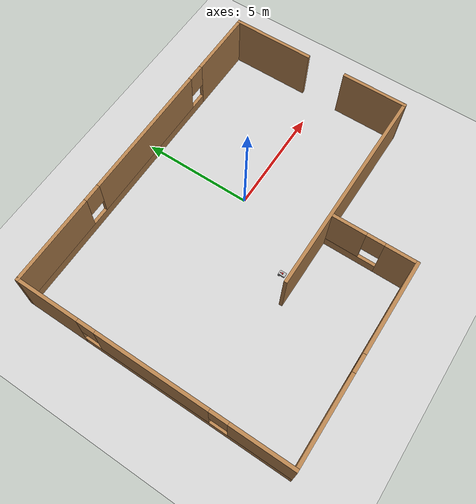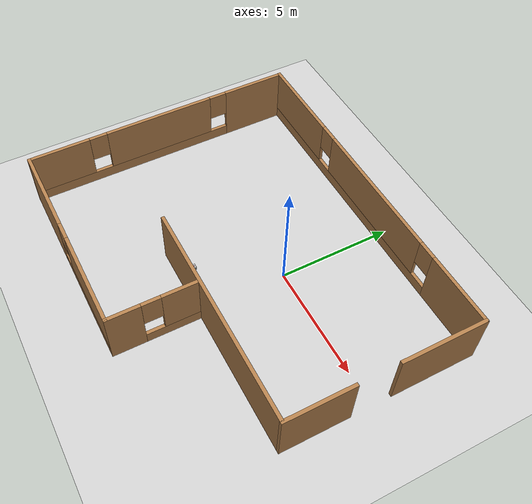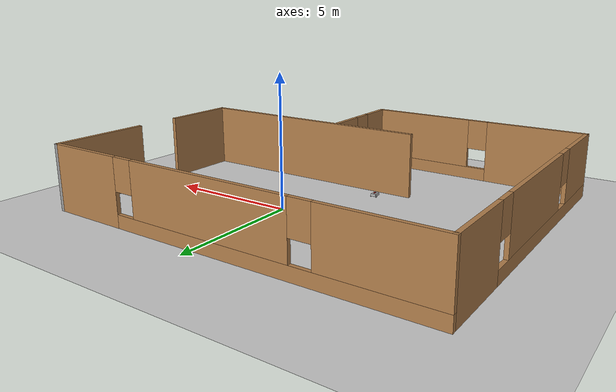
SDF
<sdf version="1.7">
 <world name="default">
  <light name="sun" type="directional">
   <pose>0 0 10 0 -0 0</pose>
   <diffuse>0.8 0.8 0.8 1</diffuse>
   <specular>0.2 0.2 0.2 1</specular>
   <attenuation>
    <range>1000</range>
    <constant>0.9</constant>
    <linear>0.01</linear>
    <quadratic>0.001</quadratic>
   </attenuation>
   <direction>-0.5 0.1 -0.9</direction>
   <spot><inner_angle>0</inner_angle><outer_angle>0</outer_angle><falloff>0</falloff></spot>
  </light>
  <model name="ground_plane">
   <static>1</static>
   <link name="link">
    <collision name="collision">
     <geometry><plane><normal>0 0 1</normal><size>100 100</size></plane></geometry>
     <surface>
      <contact><collide_bitmask>65535</collide_bitmask></contact>
      <friction><ode><mu>100</mu><mu2>50</mu2></ode></friction>
     </surface>
    </collision>
    <visual name="visual">
     <cast_shadows>0</cast_shadows>
     <geometry><plane><normal>0 0 1</normal><size>100 100</size></plane></geometry>
     <material>
      <script><uri>file://media/materials/scripts/gazebo.material</uri><name>Gazebo/Grey</name></script>
     </material>
    </visual>
   </link>
  </model>
  <gravity>0 0 -9.8</gravity>
  <magnetic_field>6e-06 2.3e-05 -4.2e-05</magnetic_field>
  <atmosphere type="adiabatic"/>
  <physics type="ode">
   <max_step_size>0.001</max_step_size>
   <real_time_factor>1</real_time_factor>
   <real_time_update_rate>1000</real_time_update_rate>
  </physics>
  <scene><ambient>0.4 0.4 0.4 1</ambient><background>0.7 0.7 0.7 1</background><shadows>1</shadows></scene>
  <audio><device>default</device></audio>
  <spherical_coordinates>
   <surface_model>EARTH_WGS84</surface_model>
   <latitude_deg>0</latitude_deg>
   <longitude_deg>0</longitude_deg>
   <elevation>0</elevation>
   <heading_deg>0</heading_deg>
  </spherical_coordinates>
  <model name="butler_cafe">
   <pose>-1.08 -1.52 0 0 -0 0</pose>
   <link name="Wall_1">
    <collision name="Wall_1_Collision">
     <geometry><box><size>9.75 0.15 2.5</size></box></geometry>
     <pose>0 0 1.25 0 -0 0</pose>
    </collision>
    <visual name="Wall_1_Visual">
     <pose>0 0 1.25 0 -0 0</pose>
     <geometry><box><size>9.75 0.15 2.5</size></box></geometry>
     <material>
      <script><uri>file://media/materials/scripts/gazebo.material</uri><name>Gazebo/Wood</name></script>
      <ambient>1 1 1 1</ambient>
     </material>
     <meta><layer>0</layer></meta>
    </visual>
    <pose>2.75 -2.3 0 0 -0 0</pose>
   </link>
   <link name="Wall_10">
    <collision name="Wall_10_Collision">
     <geometry><box><size>3.75 0.15 2.5</size></box></geometry>
     <pose>0 0 1.25 0 -0 0</pose>
    </collision>
    <visual name="Wall_10_Visual">
     <pose>0 0 1.25 0 -0 0</pose>
     <geometry><box><size>3.75 0.15 2.5</size></box></geometry>
     <material>
      <script><uri>file://media/materials/scripts/gazebo.material</uri><name>Gazebo/Wood</name></script>
      <ambient>1 1 1 1</ambient>
     </material>
     <meta><layer>0</layer></meta>
    </visual>
    <pose>7.55 4.25 0 0 -0 -1.5708</pose>
   </link>
   <link name="Wall_12">
    <collision name="Wall_12_Collision">
     <geometry><box><size>3 0.15 2.5</size></box></geometry>
     <pose>0 0 1.25 0 -0 0</pose>
    </collision>
    <visual name="Wall_12_Visual">
     <pose>0 0 1.25 0 -0 0</pose>
     <geometry><box><size>3 0.15 2.5</size></box></geometry>
     <material>
      <script><uri>file://media/materials/scripts/gazebo.material</uri><name>Gazebo/Wood</name></script>
      <ambient>1 1 1 1</ambient>
     </material>
     <meta><layer>0</layer></meta>
    </visual>
    <pose>7.55 -0.875 0 0 -0 1.5708</pose>
   </link>
   <link name="Wall_3">
    <collision name="Wall_3_Collision">
     <geometry><box><size>0.15 0.15 2.5</size></box></geometry>
     <pose>0 0 1.25 0 -0 0</pose>
    </collision>
    <visual name="Wall_3_Visual">
     <pose>0 0 1.25 0 -0 0</pose>
     <geometry><box><size>0.15 0.15 2.5</size></box></geometry>
     <material>
      <script><uri>file://media/materials/scripts/gazebo.material</uri><name>Gazebo/Grey</name></script>
      <ambient>1 1 1 1</ambient>
     </material>
     <meta><layer>0</layer></meta>
    </visual>
    <pose>7.55 6.05 0 0 -0 0</pose>
   </link>
   <link name="Wall_5">
    <pose>0 6.05 0 0 -0 3.14159</pose>
    <visual name="Wall_5_Visual_0">
     <pose>-6.03008 0 1.25 0 -0 0</pose>
     <geometry><box><size>3.18983 0.15 2.5</size></box></geometry>
     <material>
      <script><uri>file://media/materials/scripts/gazebo.material</uri><name>Gazebo/Wood</name></script>
      <ambient>1 1 1 1</ambient>
     </material>
     <meta><layer>0</layer></meta>
    </visual>
    <collision name="Wall_5_Collision_0">
     <geometry><box><size>3.18983 0.15 2.5</size></box></geometry>
     <pose>-6.03008 0 1.25 0 -0 0</pose>
    </collision>
    <visual name="Wall_5_Visual_1">
     <pose>1.59492 0 0.25 0 -0 0</pose>
     <geometry><box><size>12.0602 0.15 0.5</size></box></geometry>
     <material>
      <script><uri>file://media/materials/scripts/gazebo.material</uri><name>Gazebo/Wood</name></script>
      <ambient>1 1 1 1</ambient>
     </material>
     <meta><layer>0</layer></meta>
    </visual>
    <collision name="Wall_5_Collision_1">
     <geometry><box><size>12.0602 0.15 0.5</size></box></geometry>
     <pose>1.59492 0 0.25 0 -0 0</pose>
    </collision>
    <visual name="Wall_5_Visual_2">
     <pose>-0.446936 0 1.5 0 -0 0</pose>
     <geometry><box><size>6.37647 0.15 2</size></box></geometry>
     <material>
      <script><uri>file://media/materials/scripts/gazebo.material</uri><name>Gazebo/Wood</name></script>
      <ambient>1 1 1 1</ambient>
     </material>
     <meta><layer>0</layer></meta>
    </visual>
    <collision name="Wall_5_Collision_2">
     <geometry><box><size>6.37647 0.15 2</size></box></geometry>
     <pose>-0.446936 0 1.5 0 -0 0</pose>
    </collision>
    <visual name="Wall_5_Visual_3">
     <pose>5.58315 0 1.5 0 -0 0</pose>
     <geometry><box><size>4.0837 0.15 2</size></box></geometry>
     <material>
      <script><uri>file://media/materials/scripts/gazebo.material</uri><name>Gazebo/Wood</name></script>
      <ambient>1 1 1 1</ambient>
     </material>
     <meta><layer>0</layer></meta>
    </visual>
    <collision name="Wall_5_Collision_3">
     <geometry><box><size>4.0837 0.15 2</size></box></geometry>
     <pose>5.58315 0 1.5 0 -0 0</pose>
    </collision>
    <visual name="Wall_5_Visual_4">
     <pose>-4.03517 0 1.9 0 -0 0</pose>
     <geometry><box><size>0.8 0.15 1.2</size></box></geometry>
     <material>
      <script><uri>file://media/materials/scripts/gazebo.material</uri><name>Gazebo/Wood</name></script>
      <ambient>1 1 1 1</ambient>
     </material>
     <meta><layer>0</layer></meta>
    </visual>
    <collision name="Wall_5_Collision_4">
     <geometry><box><size>0.8 0.15 1.2</size></box></geometry>
     <pose>-4.03517 0 1.9 0 -0 0</pose>
    </collision>
    <visual name="Wall_5_Visual_5">
     <pose>3.1413 0 1.9 0 -0 0</pose>
     <geometry><box><size>0.8 0.15 1.2</size></box></geometry>
     <material>
      <script><uri>file://media/materials/scripts/gazebo.material</uri><name>Gazebo/Wood</name></script>
      <ambient>1 1 1 1</ambient>
     </material>
     <meta><layer>0</layer></meta>
    </visual>
    <collision name="Wall_5_Collision_5">
     <geometry><box><size>0.8 0.15 1.2</size></box></geometry>
     <pose>3.1413 0 1.9 0 -0 0</pose>
    </collision>
   </link>
   <link name="Wall_6">
    <pose>-7.55 0 0 0 -0 -1.5708</pose>
    <visual name="Wall_6_Visual_0">
     <pose>-4.6618 0 1.25 0 -0 0</pose>
     <geometry><box><size>2.92639 0.15 2.5</size></box></geometry>
     <material>
      <script><uri>file://media/materials/scripts/gazebo.material</uri><name>Gazebo/Wood</name></script>
      <ambient>1 1 1 1</ambient>
     </material>
     <meta><layer>0</layer></meta>
    </visual>
    <collision name="Wall_6_Collision_0">
     <geometry><box><size>2.92639 0.15 2.5</size></box></geometry>
     <pose>-4.6618 0 1.25 0 -0 0</pose>
    </collision>
    <visual name="Wall_6_Visual_1">
     <pose>1.4632 0 0.25 0 -0 0</pose>
     <geometry><box><size>9.32361 0.15 0.5</size></box></geometry>
     <material>
      <script><uri>file://media/materials/scripts/gazebo.material</uri><name>Gazebo/Wood</name></script>
      <ambient>1 1 1 1</ambient>
     </material>
     <meta><layer>0</layer></meta>
    </visual>
    <collision name="Wall_6_Collision_1">
     <geometry><box><size>9.32361 0.15 0.5</size></box></geometry>
     <pose>1.4632 0 0.25 0 -0 0</pose>
    </collision>
    <visual name="Wall_6_Visual_2">
     <pose>0.086054 0 1.5 0 -0 0</pose>
     <geometry><box><size>4.96932 0.15 2</size></box></geometry>
     <material>
      <script><uri>file://media/materials/scripts/gazebo.material</uri><name>Gazebo/Wood</name></script>
      <ambient>1 1 1 1</ambient>
     </material>
     <meta><layer>0</layer></meta>
    </visual>
    <collision name="Wall_6_Collision_2">
     <geometry><box><size>4.96932 0.15 2</size></box></geometry>
     <pose>0.086054 0 1.5 0 -0 0</pose>
    </collision>
    <visual name="Wall_6_Visual_3">
     <pose>4.74786 0 1.5 0 -0 0</pose>
     <geometry><box><size>2.75429 0.15 2</size></box></geometry>
     <material>
      <script><uri>file://media/materials/scripts/gazebo.material</uri><name>Gazebo/Wood</name></script>
      <ambient>1 1 1 1</ambient>
     </material>
     <meta><layer>0</layer></meta>
    </visual>
    <collision name="Wall_6_Collision_3">
     <geometry><box><size>2.75429 0.15 2</size></box></geometry>
     <pose>4.74786 0 1.5 0 -0 0</pose>
    </collision>
    <visual name="Wall_6_Visual_4">
     <pose>-2.7986 0 1.9 0 -0 0</pose>
     <geometry><box><size>0.8 0.15 1.2</size></box></geometry>
     <material>
      <script><uri>file://media/materials/scripts/gazebo.material</uri><name>Gazebo/Wood</name></script>
      <ambient>1 1 1 1</ambient>
     </material>
     <meta><layer>0</layer></meta>
    </visual>
    <collision name="Wall_6_Collision_4">
     <geometry><box><size>0.8 0.15 1.2</size></box></geometry>
     <pose>-2.7986 0 1.9 0 -0 0</pose>
    </collision>
    <visual name="Wall_6_Visual_5">
     <pose>2.97071 0 1.9 0 -0 0</pose>
     <geometry><box><size>0.8 0.15 1.2</size></box></geometry>
     <material>
      <script><uri>file://media/materials/scripts/gazebo.material</uri><name>Gazebo/Wood</name></script>
      <ambient>1 1 1 1</ambient>
     </material>
     <meta><layer>0</layer></meta>
    </visual>
    <collision name="Wall_6_Collision_5">
     <geometry><box><size>0.8 0.15 1.2</size></box></geometry>
     <pose>2.97071 0 1.9 0 -0 0</pose>
    </collision>
   </link>
   <link name="Wall_7">
    <pose>-3.125 -6.05 0 0 -0 0</pose>
    <visual name="Wall_7_Visual_0">
     <pose>-2.52851 0 1.25 0 -0 0</pose>
     <geometry><box><size>3.94299 0.15 2.5</size></box></geometry>
     <material>
      <script><uri>file://media/materials/scripts/gazebo.material</uri><name>Gazebo/Wood</name></script>
      <ambient>1 1 1 1</ambient>
     </material>
     <meta><layer>0</layer></meta>
    </visual>
    <collision name="Wall_7_Collision_0">
     <geometry><box><size>3.94299 0.15 2.5</size></box></geometry>
     <pose>-2.52851 0 1.25 0 -0 0</pose>
    </collision>
    <visual name="Wall_7_Visual_1">
     <pose>1.97149 0 0.25 0 -0 0</pose>
     <geometry><box><size>5.05701 0.15 0.5</size></box></geometry>
     <material>
      <script><uri>file://media/materials/scripts/gazebo.material</uri><name>Gazebo/Wood</name></script>
      <ambient>1 1 1 1</ambient>
     </material>
     <meta><layer>0</layer></meta>
    </visual>
    <collision name="Wall_7_Collision_1">
     <geometry><box><size>5.05701 0.15 0.5</size></box></geometry>
     <pose>1.97149 0 0.25 0 -0 0</pose>
    </collision>
    <visual name="Wall_7_Visual_2">
     <pose>2.37149 0 1.5 0 -0 0</pose>
     <geometry><box><size>4.25701 0.15 2</size></box></geometry>
     <material>
      <script><uri>file://media/materials/scripts/gazebo.material</uri><name>Gazebo/Wood</name></script>
      <ambient>1 1 1 1</ambient>
     </material>
     <meta><layer>0</layer></meta>
    </visual>
    <collision name="Wall_7_Collision_2">
     <geometry><box><size>4.25701 0.15 2</size></box></geometry>
     <pose>2.37149 0 1.5 0 -0 0</pose>
    </collision>
    <visual name="Wall_7_Visual_3">
     <pose>-0.157013 0 1.9 0 -0 0</pose>
     <geometry><box><size>0.8 0.15 1.2</size></box></geometry>
     <material>
      <script><uri>file://media/materials/scripts/gazebo.material</uri><name>Gazebo/Wood</name></script>
      <ambient>1 1 1 1</ambient>
     </material>
     <meta><layer>0</layer></meta>
    </visual>
    <collision name="Wall_7_Collision_3">
     <geometry><box><size>0.8 0.15 1.2</size></box></geometry>
     <pose>-0.157013 0 1.9 0 -0 0</pose>
    </collision>
   </link>
   <link name="Wall_8">
    <pose>1.3 -4.25 0 0 -0 1.5708</pose>
    <visual name="Wall_8_Visual_0">
     <pose>-1.14866 0 1.25 0 -0 0</pose>
     <geometry><box><size>1.45267 0.15 2.5</size></box></geometry>
     <material>
      <script><uri>file://media/materials/scripts/gazebo.material</uri><name>Gazebo/Wood</name></script>
      <ambient>1 1 1 1</ambient>
     </material>
     <meta><layer>0</layer></meta>
    </visual>
    <collision name="Wall_8_Collision_0">
     <geometry><box><size>1.45267 0.15 2.5</size></box></geometry>
     <pose>-1.14866 0 1.25 0 -0 0</pose>
    </collision>
    <visual name="Wall_8_Visual_1">
     <pose>0.726337 0 0.25 0 -0 0</pose>
     <geometry><box><size>2.29733 0.15 0.5</size></box></geometry>
     <material>
      <script><uri>file://media/materials/scripts/gazebo.material</uri><name>Gazebo/Wood</name></script>
      <ambient>1 1 1 1</ambient>
     </material>
     <meta><layer>0</layer></meta>
    </visual>
    <collision name="Wall_8_Collision_1">
     <geometry><box><size>2.29733 0.15 0.5</size></box></geometry>
     <pose>0.726337 0 0.25 0 -0 0</pose>
    </collision>
    <visual name="Wall_8_Visual_2">
     <pose>1.12634 0 1.5 0 -0 0</pose>
     <geometry><box><size>1.49733 0.15 2</size></box></geometry>
     <material>
      <script><uri>file://media/materials/scripts/gazebo.material</uri><name>Gazebo/Wood</name></script>
      <ambient>1 1 1 1</ambient>
     </material>
     <meta><layer>0</layer></meta>
    </visual>
    <collision name="Wall_8_Collision_2">
     <geometry><box><size>1.49733 0.15 2</size></box></geometry>
     <pose>1.12634 0 1.5 0 -0 0</pose>
    </collision>
    <visual name="Wall_8_Visual_3">
     <pose>-0.022327 0 1.9 0 -0 0</pose>
     <geometry><box><size>0.8 0.15 1.2</size></box></geometry>
     <material>
      <script><uri>file://media/materials/scripts/gazebo.material</uri><name>Gazebo/Wood</name></script>
      <ambient>1 1 1 1</ambient>
     </material>
     <meta><layer>0</layer></meta>
    </visual>
    <collision name="Wall_8_Collision_3">
     <geometry><box><size>0.8 0.15 1.2</size></box></geometry>
     <pose>-0.022327 0 1.9 0 -0 0</pose>
    </collision>
   </link>
   <static>1</static>
  </model>
  <model name="butler">
   <link name="base_link">
    <inertial>
     <pose>0 0 0.088525 0 -0 0</pose>
     <mass>3.05</mass>
     <inertia>
      <ixx>0.0304984</ixx>
      <ixy>0</ixy>
      <ixz>0</ixz>
      <iyy>0.0304984</iyy>
      <iyz>0</iyz>
      <izz>0.0301</izz>
     </inertia>
    </inertial>
    <collision name="base_link_collision">
     <pose>0 0 0.09 0 -0 0</pose>
     <geometry><box><size>0.3 0.2 0.1</size></box></geometry>
    </collision>
    <collision name="base_link_fixed_joint_lump__center_spherical_wheel_collision_1">
     <pose>-0.1 0 0.0425 0 -0 0</pose>
     <geometry><sphere><radius>0.04</radius></sphere></geometry>
     <surface><friction><ode><mu>0.001</mu><mu2>0.001</mu2></ode></friction></surface>
    </collision>
    <collision name="base_link_fixed_joint_lump__camera_link_collision_2">
     <pose>0.08 0 0.15 1.5708 -0 0</pose>
     <geometry><box><size>0.03 0.03 0.03</size></box></geometry>
    </collision>
    <collision name="base_link_fixed_joint_lump__laser_frame_collision_3">
     <pose>0 0 0.15 0 -0 0</pose>
     <geometry><cylinder><length>0.03</length><radius>0.04</radius></cylinder></geometry>
    </collision>
    <visual name="base_link_visual">
     <pose>0 0 0.09 0 -0 0</pose>
     <geometry><box><size>0.3 0.2 0.1</size></box></geometry>
    </visual>
    <visual name="base_link_fixed_joint_lump__center_spherical_wheel_visual_1">
     <pose>-0.1 0 0.0425 0 -0 0</pose>
     <geometry><sphere><radius>0.04</radius></sphere></geometry>
     <material>
      <script><name>Gazebo/Black</name><uri>file://media/materials/scripts/gazebo.material</uri></script>
     </material>
    </visual>
    <visual name="base_link_fixed_joint_lump__camera_link_visual_2">
     <pose>0.08 0 0.15 0 -0 0</pose>
     <geometry><box><size>0.03 0.03 0.03</size></box></geometry>
     <material>
      <script><name>Gazebo/Red</name><uri>file://media/materials/scripts/gazebo.material</uri></script>
     </material>
    </visual>
    <visual name="base_link_fixed_joint_lump__laser_frame_visual_3">
     <pose>0 0 0.15 0 -0 0</pose>
     <geometry><cylinder><length>0.03</length><radius>0.04</radius></cylinder></geometry>
     <material>
      <script><name>Gazebo/Red</name><uri>file://media/materials/scripts/gazebo.material</uri></script>
     </material>
    </visual>
    <sensor name="camera" type="camera">
     <visualize>1</visualize>
     <update_rate>10</update_rate>
     <camera>
      <horizontal_fov>1.089</horizontal_fov>
      <image><format>R8G8B8</format><width>640</width><height>480</height></image>
      <clip><near>0.05</near><far>8</far></clip>
     </camera>
     <plugin name="camera_controller" filename="libgazebo_ros_camera.so">
      <frame_name>camera_link_optical</frame_name>
     </plugin>
     <pose>0.08 0 0.15 0 -0 0</pose>
    </sensor>
    <sensor name="laser" type="ray">
     <visualize>1</visualize>
     <update_rate>10</update_rate>
     <ray>
      <scan>
       <horizontal>
        <samples>360</samples>
        <min_angle>-3.14</min_angle>
        <max_angle>3.14</max_angle>
        <resolution>1</resolution>
       </horizontal>
       <vertical><samples>1</samples><min_angle>0</min_angle><max_angle>0</max_angle></vertical>
      </scan>
      <range><min>0.2</min><max>12</max></range>
     </ray>
     <plugin name="laser_controller" filename="libgazebo_ros_ray_sensor.so">
      <ros><remapping>~/out:=/scan</remapping></ros>
      <output_type>sensor_msgs/LaserScan</output_type>
      <frame_name>laser_frame</frame_name>
     </plugin>
     <pose>0 0 0.15 0 -0 0</pose>
    </sensor>
   </link>
   <joint name="body_left_wheel" type="revolute">
    <pose relative_to="base_link">0.1 -0.11 0.0425 0 -0 0</pose>
    <parent>base_link</parent>
    <child>left_wheel</child>
    <axis>
     <xyz>0 1 0</xyz>
     <limit><lower>-1e+16</lower><upper>1e+16</upper></limit>
     <dynamics><spring_reference>0</spring_reference><spring_stiffness>0</spring_stiffness></dynamics>
    </axis>
   </joint>
   <link name="left_wheel">
    <pose relative_to="body_left_wheel">0 0 0 0 -0 0</pose>
    <inertial>
     <mass>0.3</mass>
     <inertia><ixx>0.0005</ixx><ixy>0</ixy><ixz>0</ixz><iyy>0.0005</iyy><iyz>0</iyz><izz>0.0005</izz></inertia>
    </inertial>
    <collision name="left_wheel_collision">
     <pose>0 0 0 1.5708 -0 0</pose>
     <geometry><cylinder><length>0.03</length><radius>0.0425</radius></cylinder></geometry>
    </collision>
    <visual name="left_wheel_visual">
     <pose>0 0 0 1.5708 -0 0</pose>
     <geometry><cylinder><length>0.03</length><radius>0.0425</radius></cylinder></geometry>
    </visual>
   </link>
   <joint name="body_right_wheel" type="revolute">
    <pose relative_to="base_link">0.1 0.11 0.0425 0 -0 0</pose>
    <parent>base_link</parent>
    <child>right_wheel</child>
    <axis>
     <xyz>0 1 0</xyz>
     <limit><lower>-1e+16</lower><upper>1e+16</upper></limit>
     <dynamics><spring_reference>0</spring_reference><spring_stiffness>0</spring_stiffness></dynamics>
    </axis>
   </joint>
   <link name="right_wheel">
    <pose relative_to="body_right_wheel">0 0 0 0 -0 0</pose>
    <inertial>
     <mass>0.3</mass>
     <inertia><ixx>0.0005</ixx><ixy>0</ixy><ixz>0</ixz><iyy>0.0005</iyy><iyz>0</iyz><izz>0.0005</izz></inertia>
    </inertial>
    <collision name="right_wheel_collision">
     <pose>0 0 0 1.5708 -0 0</pose>
     <geometry><cylinder><length>0.03</length><radius>0.0425</radius></cylinder></geometry>
    </collision>
    <visual name="right_wheel_visual">
     <pose>0 0 0 1.5708 -0 0</pose>
     <geometry><cylinder><length>0.03</length><radius>0.0425</radius></cylinder></geometry>
    </visual>
   </link>
   <static>0</static>
   <plugin name="gazebo_diff_drive" filename="libgazebo_ros_diff_drive.so">
    <ros><namespace>/</namespace><remapping>cmd_vel:=/cmd_vel</remapping></ros>
    <left_joint>body_right_wheel</left_joint>
    <right_joint>body_left_wheel</right_joint>
    <wheel_separation>0.22</wheel_separation>
    <wheel_diameter>0.08</wheel_diameter>
    <max_wheel_torque>5.0</max_wheel_torque>
    <max_wheel_acceleration>10.0</max_wheel_acceleration>
    <odometry_frame>odom</odometry_frame>
    <robot_base_frame>base_link</robot_base_frame>
    <publish_odometry>1</publish_odometry>
    <publish_wheel_tf>1</publish_wheel_tf>
    <publish_odom_tf>1</publish_odom_tf>
   </plugin>
   <pose>-2.03988 -3.18727 -0.001247 0 -0.0125 1.56776</pose>
  </model>
 </world>
</sdf>
